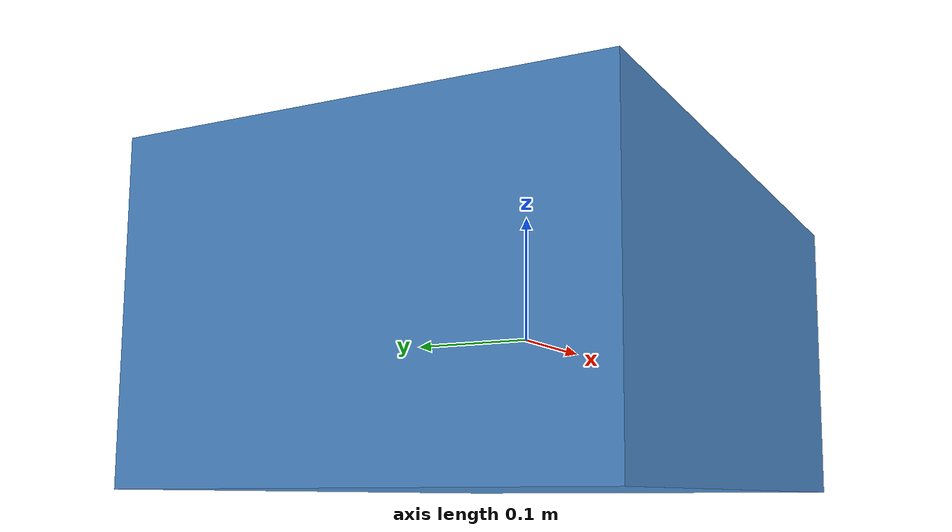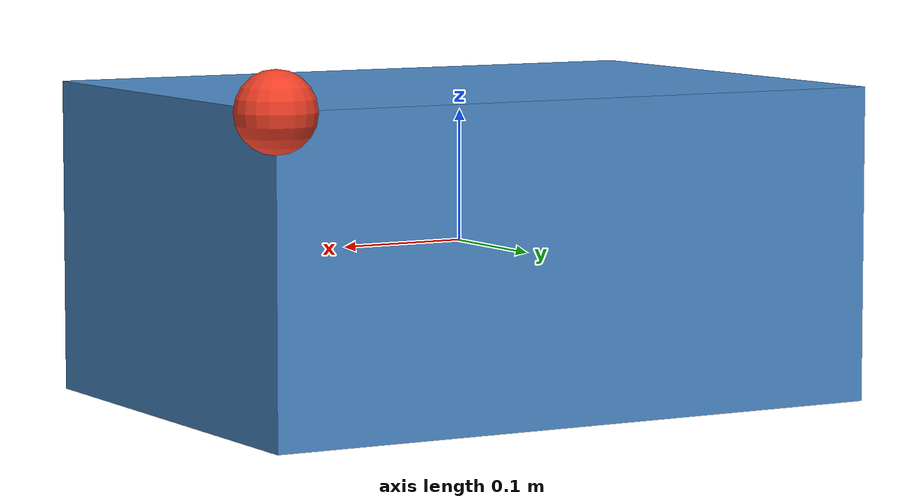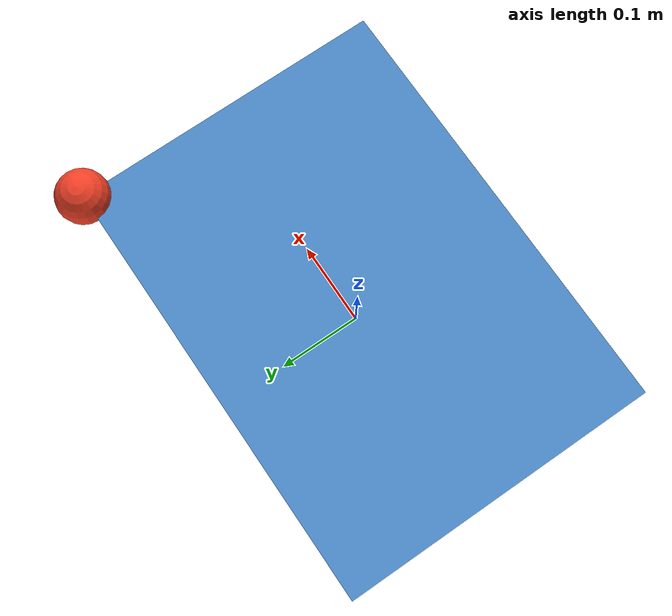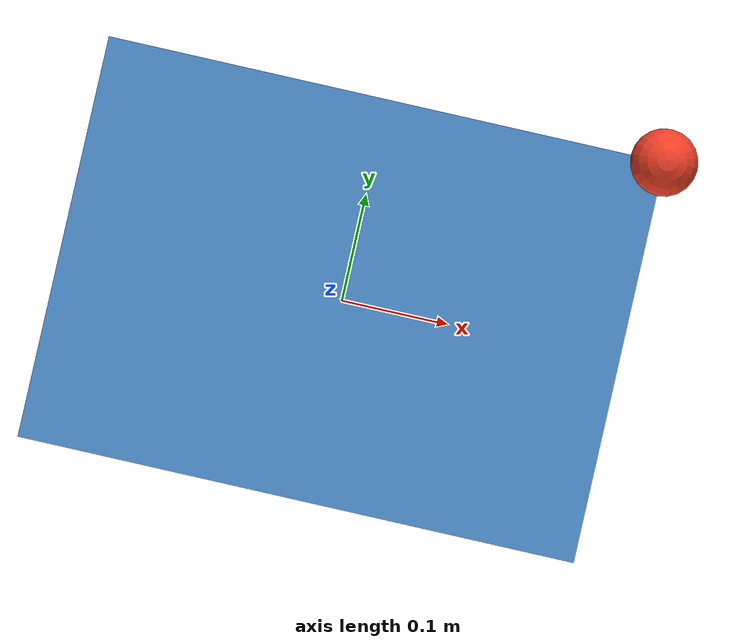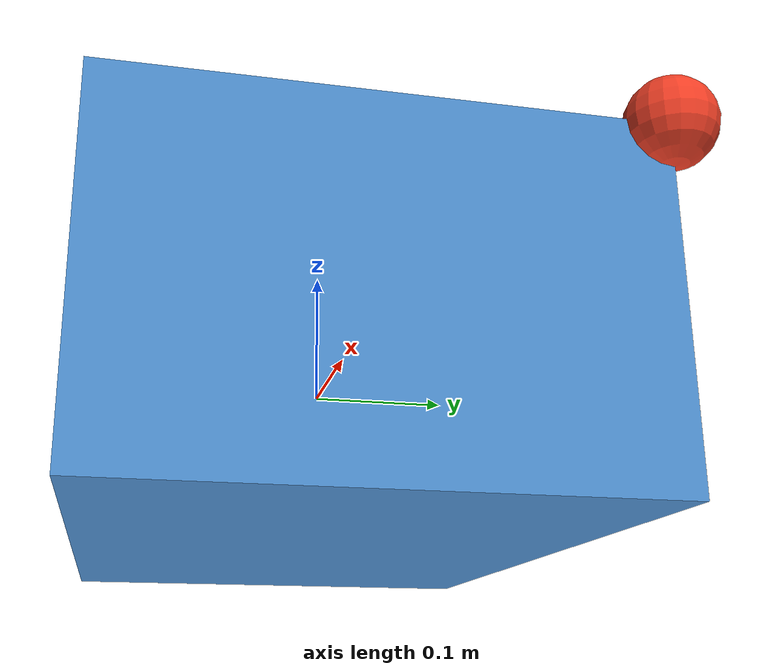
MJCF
<mujoco model="tumble">
  <compiler angle="radian"/>
  <option gravity="0 0 0" timestep="0.001" integrator="RK4">
    <flag energy="enable"/>
  </option>

  <worldbody>
    <body name="box" pos="0 0 0">
      <freejoint name="free"/>
      <inertial pos="0 0 0" mass="2.0" diaginertia="0.10 0.06 0.03"/>
      <geom name="body" type="box" size="0.25 0.18 0.12"
            contype="0" conaffinity="0" rgba="0.30 0.55 0.80 1"/>
      <geom name="marker" type="sphere" size="0.03"
            pos="0.25 0.18 0.12" contype="0" conaffinity="0"
            rgba="0.95 0.25 0.15 1"/>
    </body>
  </worldbody>

  <sensor>
    <subtreeangmom name="angmom" body="box"/>
  </sensor>
</mujoco>
